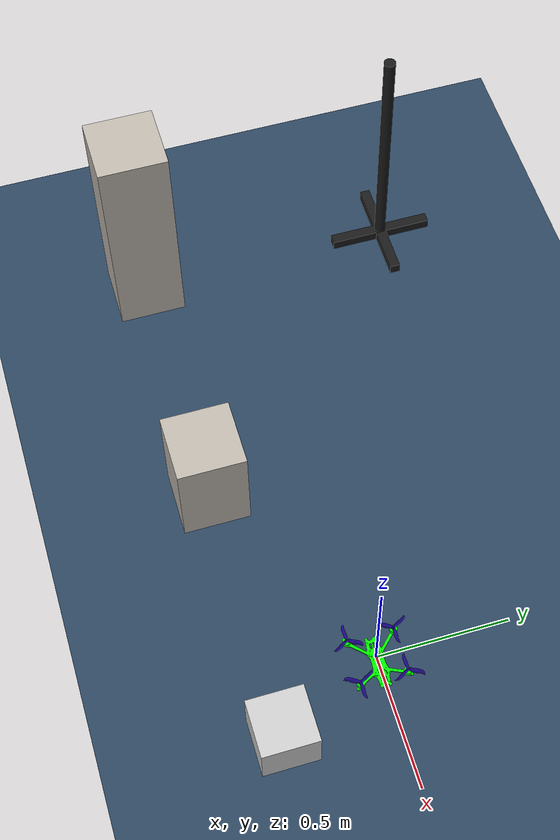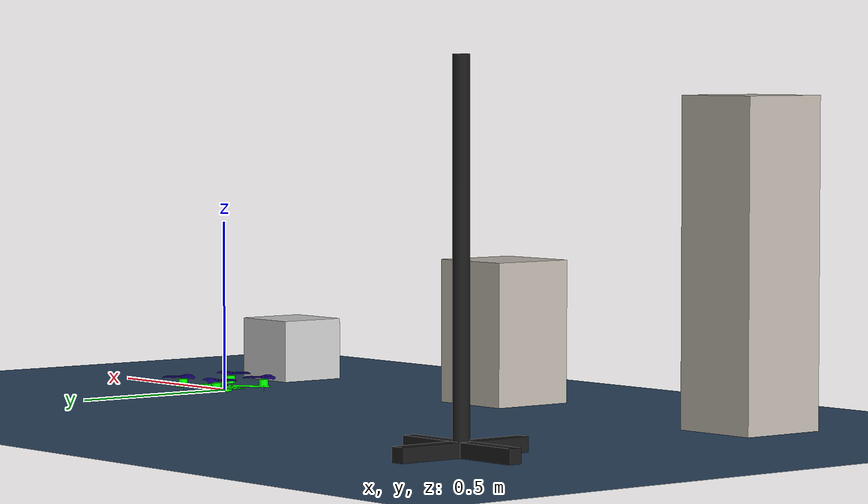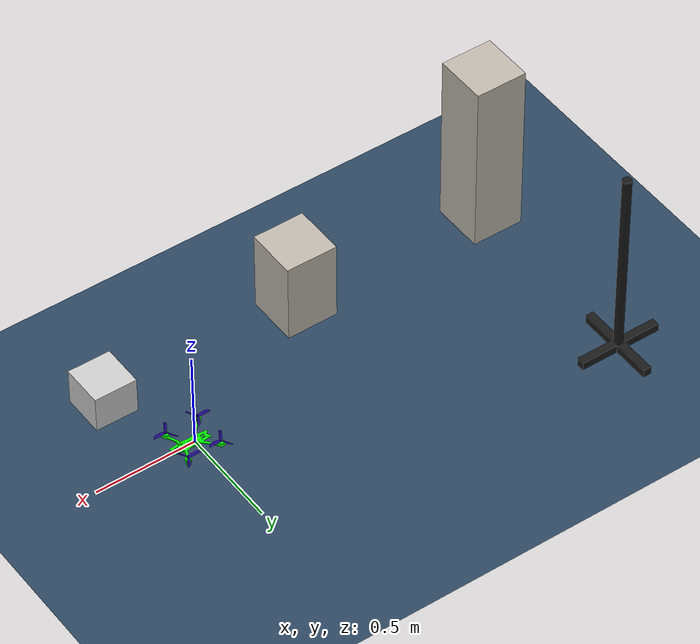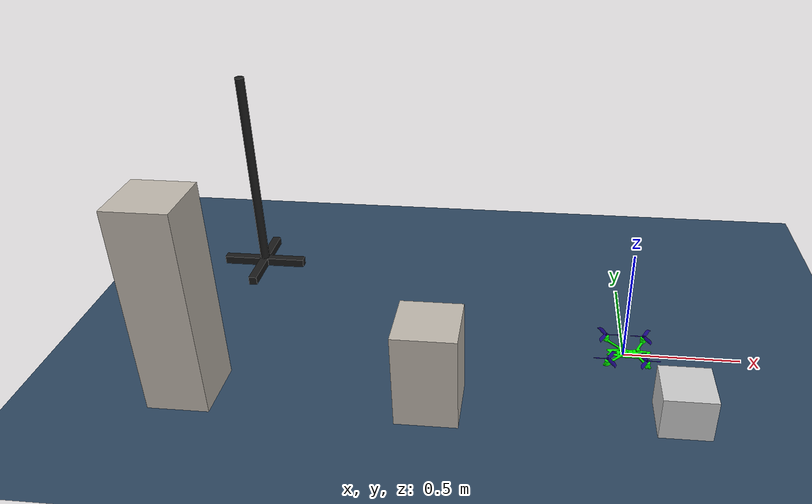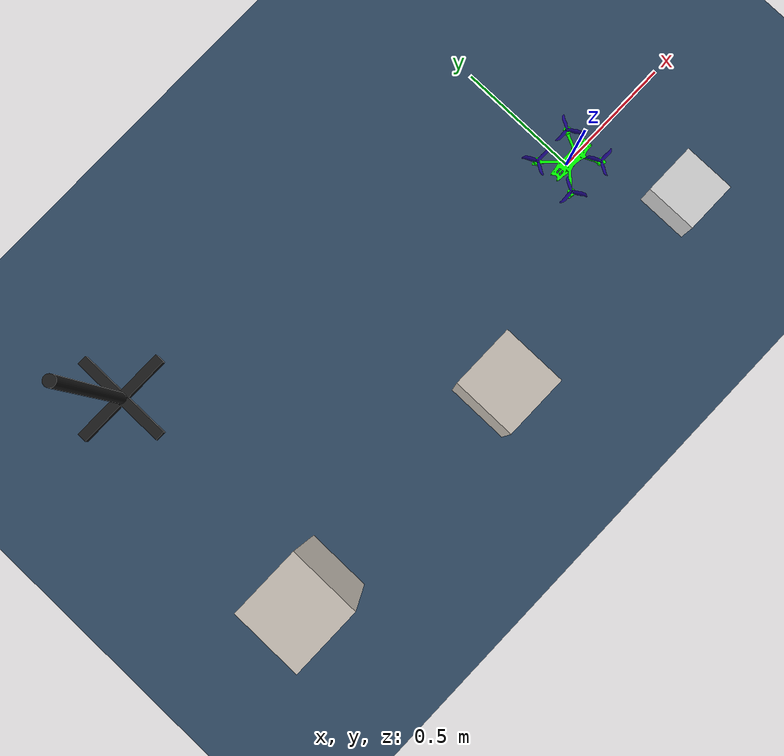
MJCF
<mujoco model="empty_checkerboard">
	<include file="common_assets.xml" />
	<default class="main">
		<default class="pole">
			<geom rgba="0.1 0.1 0.1 1" />
			<default class="pole_top">
				<geom type="cylinder" size="0.022 0.5" pos="0 0 0.5" />
			</default>
			<default class="pole_bottom1">
				<geom type="box" size="0.02 0.205 0.02" quat="0.7071 0 0 0.7071" pos="0 0 0.02" />
				<default class="pole_bottom2">
					<geom quat="1 0 0 0" />
				</default>
			</default>
		</default>
		<default class="landing_zone">
			<geom type="box" pos="0 0 0.01" size="0.1175 0.0975 0.01" rgba="0.8 0.8 0.8 1.0" />
		</default>
	</default>
	<compiler angle="radian" meshdir="" />
	<option timestep="0.001" integrator="implicitfast" />
	<visual>
		<quality shadowsize="4096" />
		<global offwidth="1920" offheight="1200" />
	</visual>
	<asset>
		<mesh file="meshes/crazyflie/cf2_assembly.stl" name="crazyflie" smoothnormal="true" scale="1.5 1.5 1.5" />
		<mesh file="meshes/building/lagyi_cockpit.stl" name="cockpit" smoothnormal="true" scale="0.0085 0.0085 0.0085" />
		<mesh file="meshes/building/lagyi_fal1.stl" name="fal1" smoothnormal="true" scale="0.0085 0.0085 0.0085" />
		<mesh file="meshes/building/lagyi_fal2.stl" name="fal2" smoothnormal="true" scale="0.0085 0.0085 0.0085" />
		<mesh file="meshes/building/lagyi_oszlop1.stl" name="oszlop1" smoothnormal="true" scale="0.0085 0.0085 0.0085" />
		<mesh file="meshes/building/lagyi_oszlop2.stl" name="oszlop2" smoothnormal="true" scale="0.0085 0.0085 0.0085" />
		<mesh file="meshes/building/lagyi_oszlop3.stl" name="oszlop3" smoothnormal="true" scale="0.0085 0.0085 0.0085" />
		<mesh file="meshes/building/lagyi_oszlop4.stl" name="oszlop4" smoothnormal="true" scale="0.0085 0.0085 0.0085" />
		<mesh file="meshes/bucket/Bucket3.obj" name="bucket" smoothnormal="false" scale="0.035 0.035 0.035" />
		<texture type="skybox" builtin="gradient" rgb1=".3 .5 .7" rgb2="0 0 0" width="512" height="512" />
		<texture name="tex-carpet" type="2d" file="textures/carpet_lagyi4.png" />
		<texture name="tex-roundabout" type="2d" file="textures/roundabout.png" />
		<texture name="tex-hospital" type="2d" file="textures/hospital.png" />
		<texture name="tex-post_office" type="2d" file="textures/post_office.png" />
		<texture name="tex-airport" type="2d" file="textures/airport.png" />
		<texture name="tex-parking_lot" type="2d" file="textures/parking_lot.png" />
		<texture name="tex-sztaki" type="2d" file="textures/sztaki.png" />
		<material name="mat-carpet" shininess="0.1" texture="tex-carpet" texuniform="false" />
		<material name="mat-roundabout" reflectance="0.7" texture="tex-roundabout" texuniform="false" />
		<material name="mat-hospital" reflectance="0.7" texrepeat="7.843 7.692" texture="tex-hospital" texuniform="true" />
		<material name="mat-post_office" reflectance="0.7" texrepeat="7.843 7.843" texture="tex-post_office" texuniform="true" />
		<material name="mat-airport" reflectance="0.7" texrepeat="9.524 9.524" texture="tex-airport" texuniform="true" />
		<material name="mat-parking_lot" reflectance="0.7" texrepeat="9.524 8.696" texture="tex-parking_lot" texuniform="true" />
		<material name="mat-sztaki" reflectance="0.7" texrepeat="9.524 9.524" texture="tex-sztaki" texuniform="true" />
		<texture name="grid" type="2d" builtin="checker" width="100" height="100" rgb1=".1 .2 .3" rgb2=".25 .35 .45" />
		<material name="grid" texture="grid" texrepeat="1 1" texuniform="true" reflectance=".05" />
	</asset>
	<worldbody>
		<light dir="0 -0.3 -1" diffuse=".9 .9 .9" specular="0.6 0.9 0.6" pos="1 1 15" cutoff="70" />
		<light dir="-.2 1 -.4" diffuse=".9 .9 .9" specular="0.6 0.9 0.6" pos="2 -5 6" cutoff="70" />
		<light dir="-1.0 -1.0 -.4" diffuse=".9 .9 .9" specular="0.6 0.9 0.6" pos="10 10 6" directional="true" cutoff="70" />
		<camera pos="2.867 -5.173 1.776" xyaxes="0.875 0.485 0.000 -0.139 0.252 0.958" />
		<geom name="ground" size="20 20 .005" type="plane" material="grid" condim="3" />
		<body name="Pole_0" pos="-1.800700531781806 0.5990461113206513 0.0" quat="0 0 0 1" mocap="true">
			<geom class="pole_top" />
			<geom class="pole_bottom1" />
			<geom class="pole_bottom2" />
		</body>
		<body name="Hospital_0" pos="-1.800700531781806 -0.40095388867934867 0.0" quat="0 0 0 1" mocap="true">
			<geom name="Hospital_0" type="box" pos="0 0 0.445" size="0.1275 0.13 0.445" material="mat-hospital" />
		</body>
		<body name="PostOffice_0" pos="-0.8007005317818059 -0.40095388867934867 0.0" quat="0 0 0 1" mocap="true">
			<geom name="PostOffice_0" type="box" pos="0 0 0.205" size="0.1275 0.1275 0.205" material="mat-post_office" />
		</body>
		<body name="Sztaki_0" pos="0.1992994682181941 -0.40095388867934867 0.0" quat="0 0 0 1" mocap="true">
			<geom name="Sztaki_0" type="box" pos="0 0 0.0925" size="0.105 0.105 0.0925" rgba="0.8 0.8 0.8 1.0" material="mat-sztaki" />
		</body>
		<body name="MocapBumblebee_0" pos="0 0 0" quat="1 0 0 0" mocap="true">
			<geom name="MocapBumblebee_0_body" pos="0.0132 0 0" type="mesh" quat="-0.7071067811865475 -0.0 0.0 0.7071067811865476" mesh="bumblebee_body" rgba="0 1 0 1" />
			<body name="MocapBumblebee_0_prop0">
				<joint name="MocapBumblebee_0_prop0" axis="0 0 1" pos="0.091 -0.087 0.036" />
				<geom name="MocapBumblebee_0_prop0" type="mesh" mesh="bumblebee_ccw_prop" pos="0.091 -0.087 0.036" rgba="0.1 0.02 0.5 1.0" />
			</body>
			<body name="MocapBumblebee_0_prop1">
				<joint name="MocapBumblebee_0_prop1" axis="0 0 1" pos="-0.074 -0.087 0.036" />
				<geom name="MocapBumblebee_0_prop1" type="mesh" mesh="bumblebee_cw_prop" pos="-0.074 -0.087 0.036" rgba="0.1 0.02 0.5 1.0" />
			</body>
			<body name="MocapBumblebee_0_prop2">
				<joint name="MocapBumblebee_0_prop2" axis="0 0 1" pos="-0.074 0.087 0.036" />
				<geom name="MocapBumblebee_0_prop2" type="mesh" mesh="bumblebee_ccw_prop" pos="-0.074 0.087 0.036" rgba="0.1 0.02 0.5 1.0" />
			</body>
			<body name="MocapBumblebee_0_prop3">
				<joint name="MocapBumblebee_0_prop3" axis="0 0 1" pos="0.091 0.087 0.036" />
				<geom name="MocapBumblebee_0_prop3" type="mesh" mesh="bumblebee_cw_prop" pos="0.091 0.087 0.036" rgba="0.1 0.02 0.5 1.0" />
			</body>
		</body>
	</worldbody>
	<actuator />
	<sensor />
</mujoco>

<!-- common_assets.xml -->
<mujoco>
  <asset>
    <mesh file="meshes/payload/payload_simplified.stl" name="payload_simplified" smoothnormal="false" scale="0.00115 0.00115 0.00115"/>

    <mesh file="meshes/crazyflie/cf_body.stl" name="crazyflie_body" smoothnormal="true" scale="1.0452 1.0452 1.0452"/>
    <mesh file="meshes/crazyflie/4_motormounts.stl" name="crazyflie_4_motormounts" smoothnormal="true" scale="1.0452 1.0452 1.0452"/>
    <mesh file="meshes/crazyflie/4_motors.stl" name="crazyflie_4_motors" smoothnormal="true" scale="1.0452 1.0452 1.0452"/>
    <mesh file="meshes/crazyflie/ccw_prop.stl" name="crazyflie_ccw_prop" smoothnormal="true" scale="1.0452 1.0452 1.0452"/>
    <mesh file="meshes/crazyflie/cw_prop.stl" name="crazyflie_cw_prop" smoothnormal="true" scale="1.0452 1.0452 1.0452"/>

    <mesh file="meshes/bumblebee/quad_model_no_prop_simplified.stl" name="bumblebee_body" smoothnormal="true" scale="0.001 0.001 0.001"/>
    <mesh file="meshes/bumblebee/ccw_propeller_simplified.stl" name="bumblebee_ccw_prop" smoothnormal="true" scale="0.001 0.001 0.001"/>
    <mesh file="meshes/bumblebee/cw_propeller_simplified.stl" name="bumblebee_cw_prop" smoothnormal="true" scale="0.001 0.001 0.001"/>

    <texture name="tex_check" builtin="checker" type="2d" width="256" height="256" rgb1=".8 .1 .1" rgb2=".1 .1 .8"/>
    <material name="material_check" texture="tex_check" texrepeat="2 2" texuniform="true"/>
  </asset>
</mujoco>
